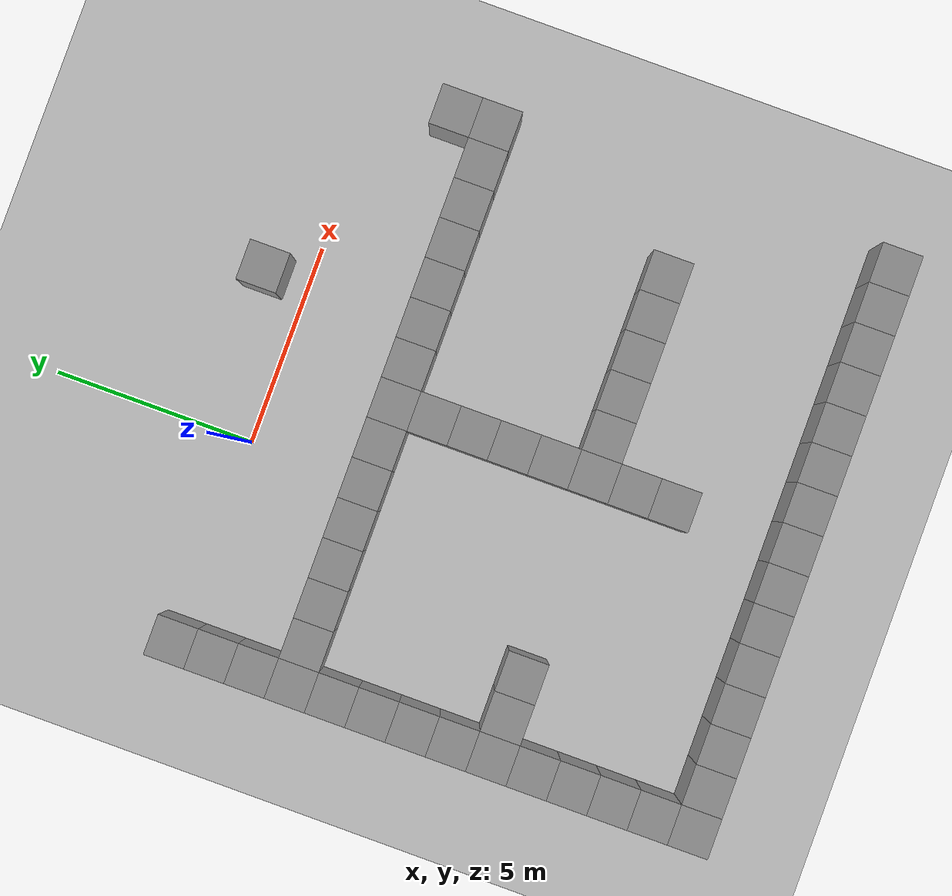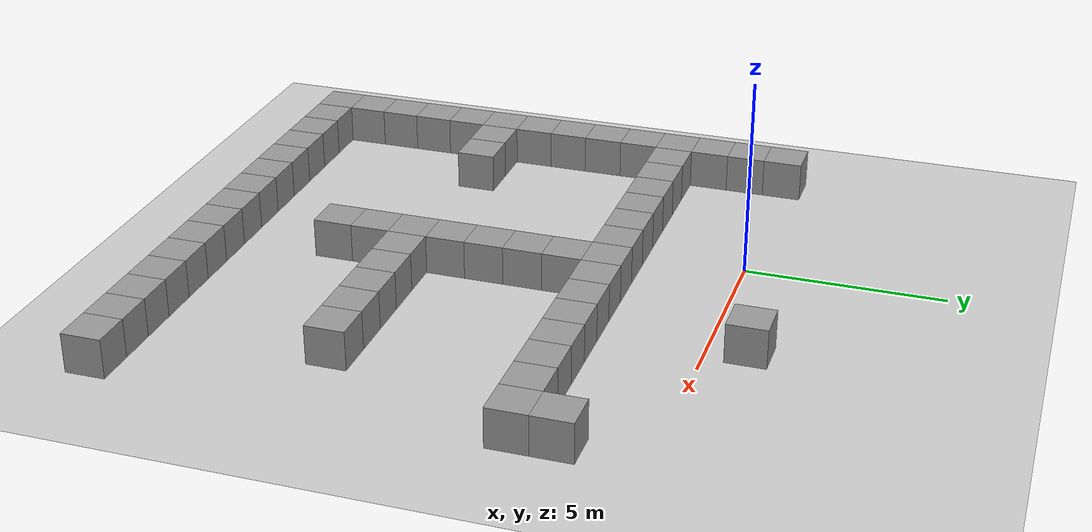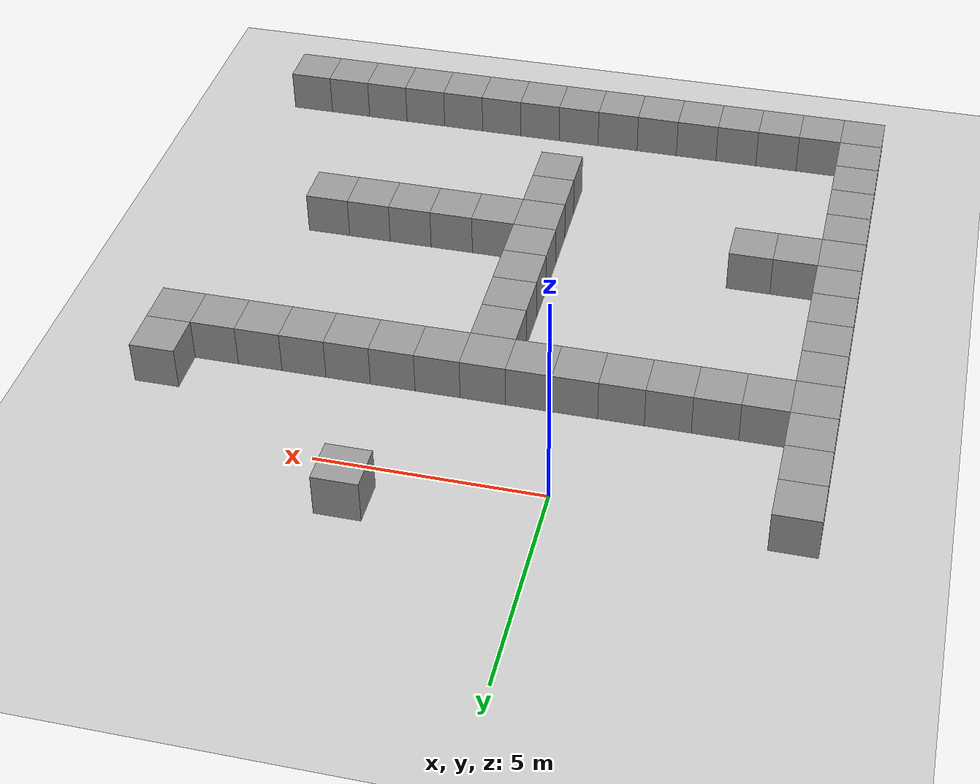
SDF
<sdf version="1.6">
 <world name="default">
  <model name="ground_plane">
   <static>1</static>
   <link name="link">
    <collision name="collision">
     <geometry><plane><normal>0 0 1</normal><size>100 100</size></plane></geometry>
     <surface><friction><ode><mu>100</mu><mu2>50</mu2></ode></friction></surface>
    </collision>
    <visual name="visual">
     <cast_shadows>0</cast_shadows>
     <geometry><plane><normal>0 0 1</normal><size>100 100</size></plane></geometry>
     <material>
      <script><uri>file://media/materials/scripts/gazebo.material</uri><name>Gazebo/Grey</name></script>
     </material>
    </visual>
    <velocity_decay><linear>0</linear><angular>0</angular></velocity_decay>
   </link>
  </model>
  <model name="unit_box_14">
   <pose>4 1 0.5 0 0 0</pose>
   <static>1</static>
   <link name="link">
    <inertial>
     <mass>1</mass>
     <inertia><ixx>1</ixx><ixy>0</ixy><ixz>0</ixz><iyy>1</iyy><iyz>0</iyz><izz>1</izz></inertia>
    </inertial>
    <collision name="collision"><geometry><box><size>1 1 1</size></box></geometry></collision>
    <visual name="visual">
     <geometry><box><size>1 1 1</size></box></geometry>
     <material>
      <script><uri>file://media/materials/scripts/gazebo.material</uri><name>Gazebo/Grey</name></script>
     </material>
    </visual>
    <velocity_decay><linear>0</linear><angular>0</angular></velocity_decay>
   </link>
   <static>0</static>
  </model>
  <model name="unit_box_15">
   <pose>-1 -3 0.5 0 0 0</pose>
   <static>1</static>
   <link name="link">
    <inertial>
     <mass>1</mass>
     <inertia><ixx>1</ixx><ixy>0</ixy><ixz>0</ixz><iyy>1</iyy><iyz>0</iyz><izz>1</izz></inertia>
    </inertial>
    <collision name="collision"><geometry><box><size>1 1 1</size></box></geometry></collision>
    <visual name="visual">
     <geometry><box><size>1 1 1</size></box></geometry>
     <material>
      <script><uri>file://media/materials/scripts/gazebo.material</uri><name>Gazebo/Grey</name></script>
     </material>
    </visual>
    <velocity_decay><linear>0</linear><angular>0</angular></velocity_decay>
   </link>
   <static>0</static>
  </model>
  <model name="unit_box_16">
   <pose>0 -3 0.5 0 0 0</pose>
   <static>1</static>
   <link name="link">
    <inertial>
     <mass>1</mass>
     <inertia><ixx>1</ixx><ixy>0</ixy><ixz>0</ixz><iyy>1</iyy><iyz>0</iyz><izz>1</izz></inertia>
    </inertial>
    <collision name="collision"><geometry><box><size>1 1 1</size></box></geometry></collision>
    <visual name="visual">
     <geometry><box><size>1 1 1</size></box></geometry>
     <material>
      <script><uri>file://media/materials/scripts/gazebo.material</uri><name>Gazebo/Grey</name></script>
     </material>
    </visual>
    <velocity_decay><linear>0</linear><angular>0</angular></velocity_decay>
   </link>
   <static>0</static>
  </model>
  <model name="unit_box_17">
   <pose>1 -3 0.5 0 0 0</pose>
   <static>1</static>
   <link name="link">
    <inertial>
     <mass>1</mass>
     <inertia><ixx>1</ixx><ixy>0</ixy><ixz>0</ixz><iyy>1</iyy><iyz>0</iyz><izz>1</izz></inertia>
    </inertial>
    <collision name="collision"><geometry><box><size>1 1 1</size></box></geometry></collision>
    <visual name="visual">
     <geometry><box><size>1 1 1</size></box></geometry>
     <material>
      <script><uri>file://media/materials/scripts/gazebo.material</uri><name>Gazebo/Grey</name></script>
     </material>
    </visual>
    <velocity_decay><linear>0</linear><angular>0</angular></velocity_decay>
   </link>
   <static>0</static>
  </model>
  <model name="unit_box_18">
   <pose>2 -3 0.5 0 0 0</pose>
   <static>1</static>
   <link name="link">
    <inertial>
     <mass>1</mass>
     <inertia><ixx>1</ixx><ixy>0</ixy><ixz>0</ixz><iyy>1</iyy><iyz>0</iyz><izz>1</izz></inertia>
    </inertial>
    <collision name="collision"><geometry><box><size>1 1 1</size></box></geometry></collision>
    <visual name="visual">
     <geometry><box><size>1 1 1</size></box></geometry>
     <material>
      <script><uri>file://media/materials/scripts/gazebo.material</uri><name>Gazebo/Grey</name></script>
     </material>
    </visual>
    <velocity_decay><linear>0</linear><angular>0</angular></velocity_decay>
   </link>
   <static>0</static>
  </model>
  <model name="unit_box_19">
   <pose>3 -3 0.5 0 0 0</pose>
   <static>1</static>
   <link name="link">
    <inertial>
     <mass>1</mass>
     <inertia><ixx>1</ixx><ixy>0</ixy><ixz>0</ixz><iyy>1</iyy><iyz>0</iyz><izz>1</izz></inertia>
    </inertial>
    <collision name="collision"><geometry><box><size>1 1 1</size></box></geometry></collision>
    <visual name="visual">
     <geometry><box><size>1 1 1</size></box></geometry>
     <material>
      <script><uri>file://media/materials/scripts/gazebo.material</uri><name>Gazebo/Grey</name></script>
     </material>
    </visual>
    <velocity_decay><linear>0</linear><angular>0</angular></velocity_decay>
   </link>
   <static>0</static>
  </model>
  <model name="unit_box_20">
   <pose>4 -3 0.5 0 0 0</pose>
   <static>1</static>
   <link name="link">
    <inertial>
     <mass>1</mass>
     <inertia><ixx>1</ixx><ixy>0</ixy><ixz>0</ixz><iyy>1</iyy><iyz>0</iyz><izz>1</izz></inertia>
    </inertial>
    <collision name="collision"><geometry><box><size>1 1 1</size></box></geometry></collision>
    <visual name="visual">
     <geometry><box><size>1 1 1</size></box></geometry>
     <material>
      <script><uri>file://media/materials/scripts/gazebo.material</uri><name>Gazebo/Grey</name></script>
     </material>
    </visual>
    <velocity_decay><linear>0</linear><angular>0</angular></velocity_decay>
   </link>
   <static>0</static>
  </model>
  <model name="unit_box_21">
   <pose>5 -3 0.5 0 0 0</pose>
   <static>1</static>
   <link name="link">
    <inertial>
     <mass>1</mass>
     <inertia><ixx>1</ixx><ixy>0</ixy><ixz>0</ixz><iyy>1</iyy><iyz>0</iyz><izz>1</izz></inertia>
    </inertial>
    <collision name="collision"><geometry><box><size>1 1 1</size></box></geometry></collision>
    <visual name="visual">
     <geometry><box><size>1 1 1</size></box></geometry>
     <material>
      <script><uri>file://media/materials/scripts/gazebo.material</uri><name>Gazebo/Grey</name></script>
     </material>
    </visual>
    <velocity_decay><linear>0</linear><angular>0</angular></velocity_decay>
   </link>
   <static>0</static>
  </model>
  <model name="unit_box_22">
   <pose>6 -3 0.5 0 0 0</pose>
   <static>1</static>
   <link name="link">
    <inertial>
     <mass>1</mass>
     <inertia><ixx>1</ixx><ixy>0</ixy><ixz>0</ixz><iyy>1</iyy><iyz>0</iyz><izz>1</izz></inertia>
    </inertial>
    <collision name="collision"><geometry><box><size>1 1 1</size></box></geometry></collision>
    <visual name="visual">
     <geometry><box><size>1 1 1</size></box></geometry>
     <material>
      <script><uri>file://media/materials/scripts/gazebo.material</uri><name>Gazebo/Grey</name></script>
     </material>
    </visual>
    <velocity_decay><linear>0</linear><angular>0</angular></velocity_decay>
   </link>
   <static>0</static>
  </model>
  <model name="unit_box_23">
   <pose>7 -3 0.5 0 0 0</pose>
   <static>1</static>
   <link name="link">
    <inertial>
     <mass>1</mass>
     <inertia><ixx>1</ixx><ixy>0</ixy><ixz>0</ixz><iyy>1</iyy><iyz>0</iyz><izz>1</izz></inertia>
    </inertial>
    <collision name="collision"><geometry><box><size>1 1 1</size></box></geometry></collision>
    <visual name="visual">
     <geometry><box><size>1 1 1</size></box></geometry>
     <material>
      <script><uri>file://media/materials/scripts/gazebo.material</uri><name>Gazebo/Grey</name></script>
     </material>
    </visual>
    <velocity_decay><linear>0</linear><angular>0</angular></velocity_decay>
   </link>
   <static>0</static>
  </model>
  <model name="unit_box_24">
   <pose>8 -3 0.5 0 0 0</pose>
   <static>1</static>
   <link name="link">
    <inertial>
     <mass>1</mass>
     <inertia><ixx>1</ixx><ixy>0</ixy><ixz>0</ixz><iyy>1</iyy><iyz>0</iyz><izz>1</izz></inertia>
    </inertial>
    <collision name="collision"><geometry><box><size>1 1 1</size></box></geometry></collision>
    <visual name="visual">
     <geometry><box><size>1 1 1</size></box></geometry>
     <material>
      <script><uri>file://media/materials/scripts/gazebo.material</uri><name>Gazebo/Grey</name></script>
     </material>
    </visual>
    <velocity_decay><linear>0</linear><angular>0</angular></velocity_decay>
   </link>
   <static>0</static>
  </model>
  <model name="unit_box_25">
   <pose>9 -3 0.5 0 0 0</pose>
   <static>1</static>
   <link name="link">
    <inertial>
     <mass>1</mass>
     <inertia><ixx>1</ixx><ixy>0</ixy><ixz>0</ixz><iyy>1</iyy><iyz>0</iyz><izz>1</izz></inertia>
    </inertial>
    <collision name="collision"><geometry><box><size>1 1 1</size></box></geometry></collision>
    <visual name="visual">
     <geometry><box><size>1 1 1</size></box></geometry>
     <material>
      <script><uri>file://media/materials/scripts/gazebo.material</uri><name>Gazebo/Grey</name></script>
     </material>
    </visual>
    <velocity_decay><linear>0</linear><angular>0</angular></velocity_decay>
   </link>
   <static>0</static>
  </model>
  <model name="unit_box_26">
   <pose>9 -2 0.5 0 0 0</pose>
   <static>1</static>
   <link name="link">
    <inertial>
     <mass>1</mass>
     <inertia><ixx>1</ixx><ixy>0</ixy><ixz>0</ixz><iyy>1</iyy><iyz>0</iyz><izz>1</izz></inertia>
    </inertial>
    <collision name="collision"><geometry><box><size>1 1 1</size></box></geometry></collision>
    <visual name="visual">
     <geometry><box><size>1 1 1</size></box></geometry>
     <material>
      <script><uri>file://media/materials/scripts/gazebo.material</uri><name>Gazebo/Grey</name></script>
     </material>
    </visual>
    <velocity_decay><linear>0</linear><angular>0</angular></velocity_decay>
   </link>
   <static>0</static>
  </model>
  <model name="unit_box_44">
   <pose>-5 0 0.5 0 0 0</pose>
   <static>1</static>
   <link name="link">
    <inertial>
     <mass>1</mass>
     <inertia><ixx>1</ixx><ixy>0</ixy><ixz>0</ixz><iyy>1</iyy><iyz>0</iyz><izz>1</izz></inertia>
    </inertial>
    <collision name="collision"><geometry><box><size>1 1 1</size></box></geometry></collision>
    <visual name="visual">
     <geometry><box><size>1 1 1</size></box></geometry>
     <material>
      <script><uri>file://media/materials/scripts/gazebo.material</uri><name>Gazebo/Grey</name></script>
     </material>
    </visual>
    <velocity_decay><linear>0</linear><angular>0</angular></velocity_decay>
   </link>
   <static>0</static>
  </model>
  <model name="unit_box_45">
   <pose>-5 -1 0.5 0 0 0</pose>
   <static>1</static>
   <link name="link">
    <inertial>
     <mass>1</mass>
     <inertia><ixx>1</ixx><ixy>0</ixy><ixz>0</ixz><iyy>1</iyy><iyz>0</iyz><izz>1</izz></inertia>
    </inertial>
    <collision name="collision"><geometry><box><size>1 1 1</size></box></geometry></collision>
    <visual name="visual">
     <geometry><box><size>1 1 1</size></box></geometry>
     <material>
      <script><uri>file://media/materials/scripts/gazebo.material</uri><name>Gazebo/Grey</name></script>
     </material>
    </visual>
    <velocity_decay><linear>0</linear><angular>0</angular></velocity_decay>
   </link>
   <static>0</static>
  </model>
  <model name="unit_box_46">
   <pose>-5 -2 0.5 0 0 0</pose>
   <static>1</static>
   <link name="link">
    <inertial>
     <mass>1</mass>
     <inertia><ixx>1</ixx><ixy>0</ixy><ixz>0</ixz><iyy>1</iyy><iyz>0</iyz><izz>1</izz></inertia>
    </inertial>
    <collision name="collision"><geometry><box><size>1 1 1</size></box></geometry></collision>
    <visual name="visual">
     <geometry><box><size>1 1 1</size></box></geometry>
     <material>
      <script><uri>file://media/materials/scripts/gazebo.material</uri><name>Gazebo/Grey</name></script>
     </material>
    </visual>
    <velocity_decay><linear>0</linear><angular>0</angular></velocity_decay>
   </link>
   <static>0</static>
  </model>
  <model name="unit_box_47">
   <pose>-5 -3 0.5 0 0 0</pose>
   <static>1</static>
   <link name="link">
    <inertial>
     <mass>1</mass>
     <inertia><ixx>1</ixx><ixy>0</ixy><ixz>0</ixz><iyy>1</iyy><iyz>0</iyz><izz>1</izz></inertia>
    </inertial>
    <collision name="collision"><geometry><box><size>1 1 1</size></box></geometry></collision>
    <visual name="visual">
     <geometry><box><size>1 1 1</size></box></geometry>
     <material>
      <script><uri>file://media/materials/scripts/gazebo.material</uri><name>Gazebo/Grey</name></script>
     </material>
    </visual>
    <velocity_decay><linear>0</linear><angular>0</angular></velocity_decay>
   </link>
   <static>0</static>
  </model>
  <model name="unit_box_48">
   <pose>-4 -3 0.5 0 0 0</pose>
   <static>1</static>
   <link name="link">
    <inertial>
     <mass>1</mass>
     <inertia><ixx>1</ixx><ixy>0</ixy><ixz>0</ixz><iyy>1</iyy><iyz>0</iyz><izz>1</izz></inertia>
    </inertial>
    <collision name="collision"><geometry><box><size>1 1 1</size></box></geometry></collision>
    <visual name="visual">
     <geometry><box><size>1 1 1</size></box></geometry>
     <material>
      <script><uri>file://media/materials/scripts/gazebo.material</uri><name>Gazebo/Grey</name></script>
     </material>
    </visual>
    <velocity_decay><linear>0</linear><angular>0</angular></velocity_decay>
   </link>
   <static>0</static>
  </model>
  <model name="unit_box_49">
   <pose>-3 -3 0.5 0 0 0</pose>
   <static>1</static>
   <link name="link">
    <inertial>
     <mass>1</mass>
     <inertia><ixx>1</ixx><ixy>0</ixy><ixz>0</ixz><iyy>1</iyy><iyz>0</iyz><izz>1</izz></inertia>
    </inertial>
    <collision name="collision"><geometry><box><size>1 1 1</size></box></geometry></collision>
    <visual name="visual">
     <geometry><box><size>1 1 1</size></box></geometry>
     <material>
      <script><uri>file://media/materials/scripts/gazebo.material</uri><name>Gazebo/Grey</name></script>
     </material>
    </visual>
    <velocity_decay><linear>0</linear><angular>0</angular></velocity_decay>
   </link>
   <static>0</static>
  </model>
  <model name="unit_box_50">
   <pose>-2 -3 0.5 0 0 0</pose>
   <static>1</static>
   <link name="link">
    <inertial>
     <mass>1</mass>
     <inertia><ixx>1</ixx><ixy>0</ixy><ixz>0</ixz><iyy>1</iyy><iyz>0</iyz><izz>1</izz></inertia>
    </inertial>
    <collision name="collision"><geometry><box><size>1 1 1</size></box></geometry></collision>
    <visual name="visual">
     <geometry><box><size>1 1 1</size></box></geometry>
     <material>
      <script><uri>file://media/materials/scripts/gazebo.material</uri><name>Gazebo/Grey</name></script>
     </material>
    </visual>
    <velocity_decay><linear>0</linear><angular>0</angular></velocity_decay>
   </link>
   <static>0</static>
  </model>
  <model name="unit_box_224">
   <pose>2 -4 0.5 0 0 0</pose>
   <static>1</static>
   <link name="link">
    <inertial>
     <mass>1</mass>
     <inertia><ixx>1</ixx><ixy>0</ixy><ixz>0</ixz><iyy>1</iyy><iyz>0</iyz><izz>1</izz></inertia>
    </inertial>
    <collision name="collision"><geometry><box><size>1 1 1</size></box></geometry></collision>
    <visual name="visual">
     <geometry><box><size>1 1 1</size></box></geometry>
     <material>
      <script><uri>file://media/materials/scripts/gazebo.material</uri><name>Gazebo/Grey</name></script>
     </material>
    </visual>
    <velocity_decay><linear>0</linear><angular>0</angular></velocity_decay>
   </link>
   <static>0</static>
  </model>
  <model name="unit_box_225">
   <pose>2 -5 0.5 0 0 0</pose>
   <static>1</static>
   <link name="link">
    <inertial>
     <mass>1</mass>
     <inertia><ixx>1</ixx><ixy>0</ixy><ixz>0</ixz><iyy>1</iyy><iyz>0</iyz><izz>1</izz></inertia>
    </inertial>
    <collision name="collision"><geometry><box><size>1 1 1</size></box></geometry></collision>
    <visual name="visual">
     <geometry><box><size>1 1 1</size></box></geometry>
     <material>
      <script><uri>file://media/materials/scripts/gazebo.material</uri><name>Gazebo/Grey</name></script>
     </material>
    </visual>
    <velocity_decay><linear>0</linear><angular>0</angular></velocity_decay>
   </link>
   <static>0</static>
  </model>
  <model name="unit_box_226">
   <pose>2 -6 0.5 0 0 0</pose>
   <static>1</static>
   <link name="link">
    <inertial>
     <mass>1</mass>
     <inertia><ixx>1</ixx><ixy>0</ixy><ixz>0</ixz><iyy>1</iyy><iyz>0</iyz><izz>1</izz></inertia>
    </inertial>
    <collision name="collision"><geometry><box><size>1 1 1</size></box></geometry></collision>
    <visual name="visual">
     <geometry><box><size>1 1 1</size></box></geometry>
     <material>
      <script><uri>file://media/materials/scripts/gazebo.material</uri><name>Gazebo/Grey</name></script>
     </material>
    </visual>
    <velocity_decay><linear>0</linear><angular>0</angular></velocity_decay>
   </link>
   <static>0</static>
  </model>
  <model name="unit_box_227">
   <pose>2 -7 0.5 0 0 0</pose>
   <static>1</static>
   <link name="link">
    <inertial>
     <mass>1</mass>
     <inertia><ixx>1</ixx><ixy>0</ixy><ixz>0</ixz><iyy>1</iyy><iyz>0</iyz><izz>1</izz></inertia>
    </inertial>
    <collision name="collision"><geometry><box><size>1 1 1</size></box></geometry></collision>
    <visual name="visual">
     <geometry><box><size>1 1 1</size></box></geometry>
     <material>
      <script><uri>file://media/materials/scripts/gazebo.material</uri><name>Gazebo/Grey</name></script>
     </material>
    </visual>
    <velocity_decay><linear>0</linear><angular>0</angular></velocity_decay>
   </link>
   <static>0</static>
  </model>
  <model name="unit_box_228">
   <pose>2 -8 0.5 0 0 0</pose>
   <static>1</static>
   <link name="link">
    <inertial>
     <mass>1</mass>
     <inertia><ixx>1</ixx><ixy>0</ixy><ixz>0</ixz><iyy>1</iyy><iyz>0</iyz><izz>1</izz></inertia>
    </inertial>
    <collision name="collision"><geometry><box><size>1 1 1</size></box></geometry></collision>
    <visual name="visual">
     <geometry><box><size>1 1 1</size></box></geometry>
     <material>
      <script><uri>file://media/materials/scripts/gazebo.material</uri><name>Gazebo/Grey</name></script>
     </material>
    </visual>
    <velocity_decay><linear>0</linear><angular>0</angular></velocity_decay>
   </link>
   <static>0</static>
  </model>
  <model name="unit_box_229">
   <pose>2 -9 0.5 0 0 0</pose>
   <static>1</static>
   <link name="link">
    <inertial>
     <mass>1</mass>
     <inertia><ixx>1</ixx><ixy>0</ixy><ixz>0</ixz><iyy>1</iyy><iyz>0</iyz><izz>1</izz></inertia>
    </inertial>
    <collision name="collision"><geometry><box><size>1 1 1</size></box></geometry></collision>
    <visual name="visual">
     <geometry><box><size>1 1 1</size></box></geometry>
     <material>
      <script><uri>file://media/materials/scripts/gazebo.material</uri><name>Gazebo/Grey</name></script>
     </material>
    </visual>
    <velocity_decay><linear>0</linear><angular>0</angular></velocity_decay>
   </link>
   <static>0</static>
  </model>
  <model name="unit_box_230">
   <pose>3 -8 0.5 0 0 0</pose>
   <static>1</static>
   <link name="link">
    <inertial>
     <mass>1</mass>
     <inertia><ixx>1</ixx><ixy>0</ixy><ixz>0</ixz><iyy>1</iyy><iyz>0</iyz><izz>1</izz></inertia>
    </inertial>
    <collision name="collision"><geometry><box><size>1 1 1</size></box></geometry></collision>
    <visual name="visual">
     <geometry><box><size>1 1 1</size></box></geometry>
     <material>
      <script><uri>file://media/materials/scripts/gazebo.material</uri><name>Gazebo/Grey</name></script>
     </material>
    </visual>
    <velocity_decay><linear>0</linear><angular>0</angular></velocity_decay>
   </link>
   <static>0</static>
  </model>
  <model name="unit_box_231">
   <pose>4 -8 0.5 0 0 0</pose>
   <static>1</static>
   <link name="link">
    <inertial>
     <mass>1</mass>
     <inertia><ixx>1</ixx><ixy>0</ixy><ixz>0</ixz><iyy>1</iyy><iyz>0</iyz><izz>1</izz></inertia>
    </inertial>
    <collision name="collision"><geometry><box><size>1 1 1</size></box></geometry></collision>
    <visual name="visual">
     <geometry><box><size>1 1 1</size></box></geometry>
     <material>
      <script><uri>file://media/materials/scripts/gazebo.material</uri><name>Gazebo/Grey</name></script>
     </material>
    </visual>
    <velocity_decay><linear>0</linear><angular>0</angular></velocity_decay>
   </link>
   <static>0</static>
  </model>
  <model name="unit_box_232">
   <pose>5 -8 0.5 0 0 0</pose>
   <static>1</static>
   <link name="link">
    <inertial>
     <mass>1</mass>
     <inertia><ixx>1</ixx><ixy>0</ixy><ixz>0</ixz><iyy>1</iyy><iyz>0</iyz><izz>1</izz></inertia>
    </inertial>
    <collision name="collision"><geometry><box><size>1 1 1</size></box></geometry></collision>
    <visual name="visual">
     <geometry><box><size>1 1 1</size></box></geometry>
     <material>
      <script><uri>file://media/materials/scripts/gazebo.material</uri><name>Gazebo/Grey</name></script>
     </material>
    </visual>
    <velocity_decay><linear>0</linear><angular>0</angular></velocity_decay>
   </link>
   <static>0</static>
  </model>
  <model name="unit_box_233">
   <pose>6 -8 0.5 0 0 0</pose>
   <static>1</static>
   <link name="link">
    <inertial>
     <mass>1</mass>
     <inertia><ixx>1</ixx><ixy>0</ixy><ixz>0</ixz><iyy>1</iyy><iyz>0</iyz><izz>1</izz></inertia>
    </inertial>
    <collision name="collision"><geometry><box><size>1 1 1</size></box></geometry></collision>
    <visual name="visual">
     <geometry><box><size>1 1 1</size></box></geometry>
     <material>
      <script><uri>file://media/materials/scripts/gazebo.material</uri><name>Gazebo/Grey</name></script>
     </material>
    </visual>
    <velocity_decay><linear>0</linear><angular>0</angular></velocity_decay>
   </link>
   <static>0</static>
  </model>
  <model name="unit_box_234">
   <pose>7 -8 0.5 0 0 0</pose>
   <static>1</static>
   <link name="link">
    <inertial>
     <mass>1</mass>
     <inertia><ixx>1</ixx><ixy>0</ixy><ixz>0</ixz><iyy>1</iyy><iyz>0</iyz><izz>1</izz></inertia>
    </inertial>
    <collision name="collision"><geometry><box><size>1 1 1</size></box></geometry></collision>
    <visual name="visual">
     <geometry><box><size>1 1 1</size></box></geometry>
     <material>
      <script><uri>file://media/materials/scripts/gazebo.material</uri><name>Gazebo/Grey</name></script>
     </material>
    </visual>
    <velocity_decay><linear>0</linear><angular>0</angular></velocity_decay>
   </link>
   <static>0</static>
  </model>
  <model name="unit_box_240">
   <pose>2 -10 0.5 0 0 0</pose>
   <static>1</static>
   <link name="link">
    <inertial>
     <mass>1</mass>
     <inertia><ixx>1</ixx><ixy>0</ixy><ixz>0</ixz><iyy>1</iyy><iyz>0</iyz><izz>1</izz></inertia>
    </inertial>
    <collision name="collision"><geometry><box><size>1 1 1</size></box></geometry></collision>
    <visual name="visual">
     <geometry><box><size>1 1 1</size></box></geometry>
     <material>
      <script><uri>file://media/materials/scripts/gazebo.material</uri><name>Gazebo/Grey</name></script>
     </material>
    </visual>
    <velocity_decay><linear>0</linear><angular>0</angular></velocity_decay>
   </link>
   <static>0</static>
  </model>
  <model name="unit_box_241">
   <pose>-5 -4 0.5 0 0 0</pose>
   <static>1</static>
   <link name="link">
    <inertial>
     <mass>1</mass>
     <inertia><ixx>1</ixx><ixy>0</ixy><ixz>0</ixz><iyy>1</iyy><iyz>0</iyz><izz>1</izz></inertia>
    </inertial>
    <collision name="collision"><geometry><box><size>1 1 1</size></box></geometry></collision>
    <visual name="visual">
     <geometry><box><size>1 1 1</size></box></geometry>
     <material>
      <script><uri>file://media/materials/scripts/gazebo.material</uri><name>Gazebo/Grey</name></script>
     </material>
    </visual>
    <velocity_decay><linear>0</linear><angular>0</angular></velocity_decay>
   </link>
   <static>0</static>
  </model>
  <model name="unit_box_243">
   <pose>-4 -8 0.5 0 0 0</pose>
   <static>1</static>
   <link name="link">
    <inertial>
     <mass>1</mass>
     <inertia><ixx>1</ixx><ixy>0</ixy><ixz>0</ixz><iyy>1</iyy><iyz>0</iyz><izz>1</izz></inertia>
    </inertial>
    <collision name="collision"><geometry><box><size>1 1 1</size></box></geometry></collision>
    <visual name="visual">
     <geometry><box><size>1 1 1</size></box></geometry>
     <material>
      <script><uri>file://media/materials/scripts/gazebo.material</uri><name>Gazebo/Grey</name></script>
     </material>
    </visual>
    <velocity_decay><linear>0</linear><angular>0</angular></velocity_decay>
   </link>
   <static>0</static>
  </model>
  <model name="unit_box_244">
   <pose>-3 -8 0.5 0 0 0</pose>
   <static>1</static>
   <link name="link">
    <inertial>
     <mass>1</mass>
     <inertia><ixx>1</ixx><ixy>0</ixy><ixz>0</ixz><iyy>1</iyy><iyz>0</iyz><izz>1</izz></inertia>
    </inertial>
    <collision name="collision"><geometry><box><size>1 1 1</size></box></geometry></collision>
    <visual name="visual">
     <geometry><box><size>1 1 1</size></box></geometry>
     <material>
      <script><uri>file://media/materials/scripts/gazebo.material</uri><name>Gazebo/Grey</name></script>
     </material>
    </visual>
    <velocity_decay><linear>0</linear><angular>0</angular></velocity_decay>
   </link>
   <static>0</static>
  </model>
  <model name="unit_box_251">
   <pose>-4 -13 0.5 0 0 0</pose>
   <static>1</static>
   <link name="link">
    <inertial>
     <mass>1</mass>
     <inertia><ixx>1</ixx><ixy>0</ixy><ixz>0</ixz><iyy>1</iyy><iyz>0</iyz><izz>1</izz></inertia>
    </inertial>
    <collision name="collision"><geometry><box><size>1 1 1</size></box></geometry></collision>
    <visual name="visual">
     <geometry><box><size>1 1 1</size></box></geometry>
     <material>
      <script><uri>file://media/materials/scripts/gazebo.material</uri><name>Gazebo/Grey</name></script>
     </material>
    </visual>
    <velocity_decay><linear>0</linear><angular>0</angular></velocity_decay>
   </link>
   <static>0</static>
  </model>
  <model name="unit_box_252">
   <pose>-3 -13 0.5 0 0 0</pose>
   <static>1</static>
   <link name="link">
    <inertial>
     <mass>1</mass>
     <inertia><ixx>1</ixx><ixy>0</ixy><ixz>0</ixz><iyy>1</iyy><iyz>0</iyz><izz>1</izz></inertia>
    </inertial>
    <collision name="collision"><geometry><box><size>1 1 1</size></box></geometry></collision>
    <visual name="visual">
     <geometry><box><size>1 1 1</size></box></geometry>
     <material>
      <script><uri>file://media/materials/scripts/gazebo.material</uri><name>Gazebo/Grey</name></script>
     </material>
    </visual>
    <velocity_decay><linear>0</linear><angular>0</angular></velocity_decay>
   </link>
   <static>0</static>
  </model>
  <model name="unit_box_253">
   <pose>-2 -13 0.5 0 0 0</pose>
   <static>1</static>
   <link name="link">
    <inertial>
     <mass>1</mass>
     <inertia><ixx>1</ixx><ixy>0</ixy><ixz>0</ixz><iyy>1</iyy><iyz>0</iyz><izz>1</izz></inertia>
    </inertial>
    <collision name="collision"><geometry><box><size>1 1 1</size></box></geometry></collision>
    <visual name="visual">
     <geometry><box><size>1 1 1</size></box></geometry>
     <material>
      <script><uri>file://media/materials/scripts/gazebo.material</uri><name>Gazebo/Grey</name></script>
     </material>
    </visual>
    <velocity_decay><linear>0</linear><angular>0</angular></velocity_decay>
   </link>
   <static>0</static>
  </model>
  <model name="unit_box_254">
   <pose>-1 -13 0.5 0 0 0</pose>
   <static>1</static>
   <link name="link">
    <inertial>
     <mass>1</mass>
     <inertia><ixx>1</ixx><ixy>0</ixy><ixz>0</ixz><iyy>1</iyy><iyz>0</iyz><izz>1</izz></inertia>
    </inertial>
    <collision name="collision"><geometry><box><size>1 1 1</size></box></geometry></collision>
    <visual name="visual">
     <geometry><box><size>1 1 1</size></box></geometry>
     <material>
      <script><uri>file://media/materials/scripts/gazebo.material</uri><name>Gazebo/Grey</name></script>
     </material>
    </visual>
    <velocity_decay><linear>0</linear><angular>0</angular></velocity_decay>
   </link>
   <static>0</static>
  </model>
  <model name="unit_box_255">
   <pose>0 -13 0.5 0 0 0</pose>
   <static>1</static>
   <link name="link">
    <inertial>
     <mass>1</mass>
     <inertia><ixx>1</ixx><ixy>0</ixy><ixz>0</ixz><iyy>1</iyy><iyz>0</iyz><izz>1</izz></inertia>
    </inertial>
    <collision name="collision"><geometry><box><size>1 1 1</size></box></geometry></collision>
    <visual name="visual">
     <geometry><box><size>1 1 1</size></box></geometry>
     <material>
      <script><uri>file://media/materials/scripts/gazebo.material</uri><name>Gazebo/Grey</name></script>
     </material>
    </visual>
    <velocity_decay><linear>0</linear><angular>0</angular></velocity_decay>
   </link>
   <static>0</static>
  </model>
  <model name="unit_box_256">
   <pose>1 -13 0.5 0 0 0</pose>
   <static>1</static>
   <link name="link">
    <inertial>
     <mass>1</mass>
     <inertia><ixx>1</ixx><ixy>0</ixy><ixz>0</ixz><iyy>1</iyy><iyz>0</iyz><izz>1</izz></inertia>
    </inertial>
    <collision name="collision"><geometry><box><size>1 1 1</size></box></geometry></collision>
    <visual name="visual">
     <geometry><box><size>1 1 1</size></box></geometry>
     <material>
      <script><uri>file://media/materials/scripts/gazebo.material</uri><name>Gazebo/Grey</name></script>
     </material>
    </visual>
    <velocity_decay><linear>0</linear><angular>0</angular></velocity_decay>
   </link>
   <static>0</static>
  </model>
  <model name="unit_box_257">
   <pose>2 -13 0.5 0 0 0</pose>
   <static>1</static>
   <link name="link">
    <inertial>
     <mass>1</mass>
     <inertia><ixx>1</ixx><ixy>0</ixy><ixz>0</ixz><iyy>1</iyy><iyz>0</iyz><izz>1</izz></inertia>
    </inertial>
    <collision name="collision"><geometry><box><size>1 1 1</size></box></geometry></collision>
    <visual name="visual">
     <geometry><box><size>1 1 1</size></box></geometry>
     <material>
      <script><uri>file://media/materials/scripts/gazebo.material</uri><name>Gazebo/Grey</name></script>
     </material>
    </visual>
    <velocity_decay><linear>0</linear><angular>0</angular></velocity_decay>
   </link>
   <static>0</static>
  </model>
  <model name="unit_box_258">
   <pose>3 -13 0.5 0 0 0</pose>
   <static>1</static>
   <link name="link">
    <inertial>
     <mass>1</mass>
     <inertia><ixx>1</ixx><ixy>0</ixy><ixz>0</ixz><iyy>1</iyy><iyz>0</iyz><izz>1</izz></inertia>
    </inertial>
    <collision name="collision"><geometry><box><size>1 1 1</size></box></geometry></collision>
    <visual name="visual">
     <geometry><box><size>1 1 1</size></box></geometry>
     <material>
      <script><uri>file://media/materials/scripts/gazebo.material</uri><name>Gazebo/Grey</name></script>
     </material>
    </visual>
    <velocity_decay><linear>0</linear><angular>0</angular></velocity_decay>
   </link>
   <static>0</static>
  </model>
  <model name="unit_box_259">
   <pose>4 -13 0.5 0 0 0</pose>
   <static>1</static>
   <link name="link">
    <inertial>
     <mass>1</mass>
     <inertia><ixx>1</ixx><ixy>0</ixy><ixz>0</ixz><iyy>1</iyy><iyz>0</iyz><izz>1</izz></inertia>
    </inertial>
    <collision name="collision"><geometry><box><size>1 1 1</size></box></geometry></collision>
    <visual name="visual">
     <geometry><box><size>1 1 1</size></box></geometry>
     <material>
      <script><uri>file://media/materials/scripts/gazebo.material</uri><name>Gazebo/Grey</name></script>
     </material>
    </visual>
    <velocity_decay><linear>0</linear><angular>0</angular></velocity_decay>
   </link>
   <static>0</static>
  </model>
  <model name="unit_box_260">
   <pose>5 -13 0.5 0 0 0</pose>
   <static>1</static>
   <link name="link">
    <inertial>
     <mass>1</mass>
     <inertia><ixx>1</ixx><ixy>0</ixy><ixz>0</ixz><iyy>1</iyy><iyz>0</iyz><izz>1</izz></inertia>
    </inertial>
    <collision name="collision"><geometry><box><size>1 1 1</size></box></geometry></collision>
    <visual name="visual">
     <geometry><box><size>1 1 1</size></box></geometry>
     <material>
      <script><uri>file://media/materials/scripts/gazebo.material</uri><name>Gazebo/Grey</name></script>
     </material>
    </visual>
    <velocity_decay><linear>0</linear><angular>0</angular></velocity_decay>
   </link>
   <static>0</static>
  </model>
  <model name="unit_box_261">
   <pose>6 -13 0.5 0 0 0</pose>
   <static>1</static>
   <link name="link">
    <inertial>
     <mass>1</mass>
     <inertia><ixx>1</ixx><ixy>0</ixy><ixz>0</ixz><iyy>1</iyy><iyz>0</iyz><izz>1</izz></inertia>
    </inertial>
    <collision name="collision"><geometry><box><size>1 1 1</size></box></geometry></collision>
    <visual name="visual">
     <geometry><box><size>1 1 1</size></box></geometry>
     <material>
      <script><uri>file://media/materials/scripts/gazebo.material</uri><name>Gazebo/Grey</name></script>
     </material>
    </visual>
    <velocity_decay><linear>0</linear><angular>0</angular></velocity_decay>
   </link>
   <static>0</static>
  </model>
  <model name="unit_box_262">
   <pose>7 -13 0.5 0 0 0</pose>
   <static>1</static>
   <link name="link">
    <inertial>
     <mass>1</mass>
     <inertia><ixx>1</ixx><ixy>0</ixy><ixz>0</ixz><iyy>1</iyy><iyz>0</iyz><izz>1</izz></inertia>
    </inertial>
    <collision name="collision"><geometry><box><size>1 1 1</size></box></geometry></collision>
    <visual name="visual">
     <geometry><box><size>1 1 1</size></box></geometry>
     <material>
      <script><uri>file://media/materials/scripts/gazebo.material</uri><name>Gazebo/Grey</name></script>
     </material>
    </visual>
    <velocity_decay><linear>0</linear><angular>0</angular></velocity_decay>
   </link>
   <static>0</static>
  </model>
  <model name="unit_box_263">
   <pose>8 -13 0.5 0 0 0</pose>
   <static>1</static>
   <link name="link">
    <inertial>
     <mass>1</mass>
     <inertia><ixx>1</ixx><ixy>0</ixy><ixz>0</ixz><iyy>1</iyy><iyz>0</iyz><izz>1</izz></inertia>
    </inertial>
    <collision name="collision"><geometry><box><size>1 1 1</size></box></geometry></collision>
    <visual name="visual">
     <geometry><box><size>1 1 1</size></box></geometry>
     <material>
      <script><uri>file://media/materials/scripts/gazebo.material</uri><name>Gazebo/Grey</name></script>
     </material>
    </visual>
    <velocity_decay><linear>0</linear><angular>0</angular></velocity_decay>
   </link>
   <static>0</static>
  </model>
  <model name="unit_box_264">
   <pose>9 -13 0.5 0 0 0</pose>
   <static>1</static>
   <link name="link">
    <inertial>
     <mass>1</mass>
     <inertia><ixx>1</ixx><ixy>0</ixy><ixz>0</ixz><iyy>1</iyy><iyz>0</iyz><izz>1</izz></inertia>
    </inertial>
    <collision name="collision"><geometry><box><size>1 1 1</size></box></geometry></collision>
    <visual name="visual">
     <geometry><box><size>1 1 1</size></box></geometry>
     <material>
      <script><uri>file://media/materials/scripts/gazebo.material</uri><name>Gazebo/Grey</name></script>
     </material>
    </visual>
    <velocity_decay><linear>0</linear><angular>0</angular></velocity_decay>
   </link>
   <static>0</static>
  </model>
  <model name="unit_box_1_0">
   <pose>-5 -5 0.5 0 0 0</pose>
   <link name="link">
    <inertial>
     <mass>1</mass>
     <inertia><ixx>1</ixx><ixy>0</ixy><ixz>0</ixz><iyy>1</iyy><iyz>0</iyz><izz>1</izz></inertia>
    </inertial>
    <collision name="collision"><geometry><box><size>1 1 1</size></box></geometry></collision>
    <visual name="visual">
     <geometry><box><size>1 1 1</size></box></geometry>
     <material>
      <script><uri>file://media/materials/scripts/gazebo.material</uri><name>Gazebo/Grey</name></script>
     </material>
    </visual>
    <velocity_decay><linear>0</linear><angular>0</angular></velocity_decay>
   </link>
   <static>0</static>
  </model>
  <model name="unit_box_2_0">
   <pose>-5 -6 0.5 0 0 0</pose>
   <link name="link">
    <inertial>
     <mass>1</mass>
     <inertia><ixx>1</ixx><ixy>0</ixy><ixz>0</ixz><iyy>1</iyy><iyz>0</iyz><izz>1</izz></inertia>
    </inertial>
    <collision name="collision"><geometry><box><size>1 1 1</size></box></geometry></collision>
    <visual name="visual">
     <geometry><box><size>1 1 1</size></box></geometry>
     <material>
      <script><uri>file://media/materials/scripts/gazebo.material</uri><name>Gazebo/Grey</name></script>
     </material>
    </visual>
    <velocity_decay><linear>0</linear><angular>0</angular></velocity_decay>
   </link>
   <static>0</static>
  </model>
  <model name="unit_box_3_0">
   <pose>-5 -7 0.5 0 0 0</pose>
   <link name="link">
    <inertial>
     <mass>1</mass>
     <inertia><ixx>1</ixx><ixy>0</ixy><ixz>0</ixz><iyy>1</iyy><iyz>0</iyz><izz>1</izz></inertia>
    </inertial>
    <collision name="collision"><geometry><box><size>1 1 1</size></box></geometry></collision>
    <visual name="visual">
     <geometry><box><size>1 1 1</size></box></geometry>
     <material>
      <script><uri>file://media/materials/scripts/gazebo.material</uri><name>Gazebo/Grey</name></script>
     </material>
    </visual>
    <velocity_decay><linear>0</linear><angular>0</angular></velocity_decay>
   </link>
   <static>0</static>
  </model>
  <model name="unit_box_4_0">
   <pose>-5 -8 0.5 0 0 0</pose>
   <link name="link">
    <inertial>
     <mass>1</mass>
     <inertia><ixx>1</ixx><ixy>0</ixy><ixz>0</ixz><iyy>1</iyy><iyz>0</iyz><izz>1</izz></inertia>
    </inertial>
    <collision name="collision"><geometry><box><size>1 1 1</size></box></geometry></collision>
    <visual name="visual">
     <geometry><box><size>1 1 1</size></box></geometry>
     <material>
      <script><uri>file://media/materials/scripts/gazebo.material</uri><name>Gazebo/Grey</name></script>
     </material>
    </visual>
    <velocity_decay><linear>0</linear><angular>0</angular></velocity_decay>
   </link>
   <static>0</static>
  </model>
  <model name="unit_box_5_0">
   <pose>-5 -9 0.5 0 0 0</pose>
   <link name="link">
    <inertial>
     <mass>1</mass>
     <inertia><ixx>1</ixx><ixy>0</ixy><ixz>0</ixz><iyy>1</iyy><iyz>0</iyz><izz>1</izz></inertia>
    </inertial>
    <collision name="collision"><geometry><box><size>1 1 1</size></box></geometry></collision>
    <visual name="visual">
     <geometry><box><size>1 1 1</size></box></geometry>
     <material>
      <script><uri>file://media/materials/scripts/gazebo.material</uri><name>Gazebo/Grey</name></script>
     </material>
    </visual>
    <velocity_decay><linear>0</linear><angular>0</angular></velocity_decay>
   </link>
   <static>0</static>
  </model>
  <model name="unit_box_6_0">
   <pose>-5 -10 0.5 0 0 0</pose>
   <link name="link">
    <inertial>
     <mass>1</mass>
     <inertia><ixx>1</ixx><ixy>0</ixy><ixz>0</ixz><iyy>1</iyy><iyz>0</iyz><izz>1</izz></inertia>
    </inertial>
    <collision name="collision"><geometry><box><size>1 1 1</size></box></geometry></collision>
    <visual name="visual">
     <geometry><box><size>1 1 1</size></box></geometry>
     <material>
      <script><uri>file://media/materials/scripts/gazebo.material</uri><name>Gazebo/Grey</name></script>
     </material>
    </visual>
    <velocity_decay><linear>0</linear><angular>0</angular></velocity_decay>
   </link>
   <static>0</static>
  </model>
  <model name="unit_box_7_0">
   <pose>-5 -11 0.5 0 0 0</pose>
   <link name="link">
    <inertial>
     <mass>1</mass>
     <inertia><ixx>1</ixx><ixy>0</ixy><ixz>0</ixz><iyy>1</iyy><iyz>0</iyz><izz>1</izz></inertia>
    </inertial>
    <collision name="collision"><geometry><box><size>1 1 1</size></box></geometry></collision>
    <visual name="visual">
     <geometry><box><size>1 1 1</size></box></geometry>
     <material>
      <script><uri>file://media/materials/scripts/gazebo.material</uri><name>Gazebo/Grey</name></script>
     </material>
    </visual>
    <velocity_decay><linear>0</linear><angular>0</angular></velocity_decay>
   </link>
   <static>0</static>
  </model>
  <model name="unit_box_8_0">
   <pose>-5 -12 0.5 0 0 0</pose>
   <link name="link">
    <inertial>
     <mass>1</mass>
     <inertia><ixx>1</ixx><ixy>0</ixy><ixz>0</ixz><iyy>1</iyy><iyz>0</iyz><izz>1</izz></inertia>
    </inertial>
    <collision name="collision"><geometry><box><size>1 1 1</size></box></geometry></collision>
    <visual name="visual">
     <geometry><box><size>1 1 1</size></box></geometry>
     <material>
      <script><uri>file://media/materials/scripts/gazebo.material</uri><name>Gazebo/Grey</name></script>
     </material>
    </visual>
    <velocity_decay><linear>0</linear><angular>0</angular></velocity_decay>
   </link>
   <static>0</static>
  </model>
  <model name="unit_box_9_0">
   <pose>-5 -13 0.5 0 0 0</pose>
   <link name="link">
    <inertial>
     <mass>1</mass>
     <inertia><ixx>1</ixx><ixy>0</ixy><ixz>0</ixz><iyy>1</iyy><iyz>0</iyz><izz>1</izz></inertia>
    </inertial>
    <collision name="collision"><geometry><box><size>1 1 1</size></box></geometry></collision>
    <visual name="visual">
     <geometry><box><size>1 1 1</size></box></geometry>
     <material>
      <script><uri>file://media/materials/scripts/gazebo.material</uri><name>Gazebo/Grey</name></script>
     </material>
    </visual>
    <velocity_decay><linear>0</linear><angular>0</angular></velocity_decay>
   </link>
   <static>0</static>
  </model>
 </world>
</sdf>
